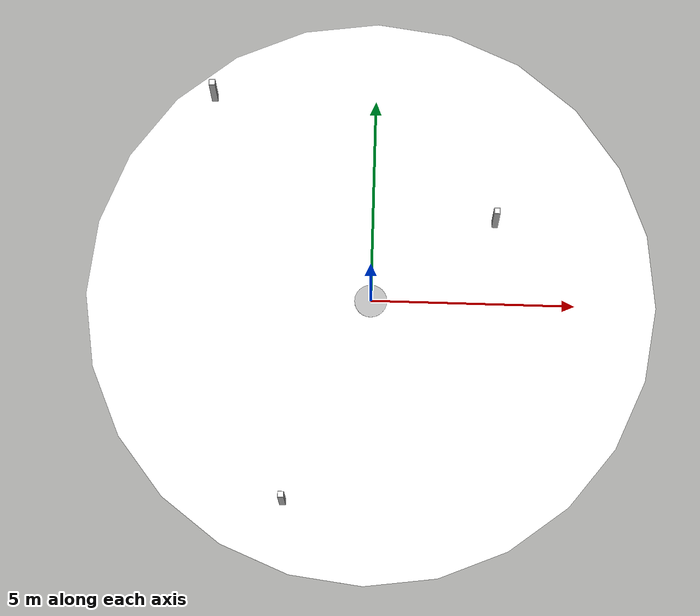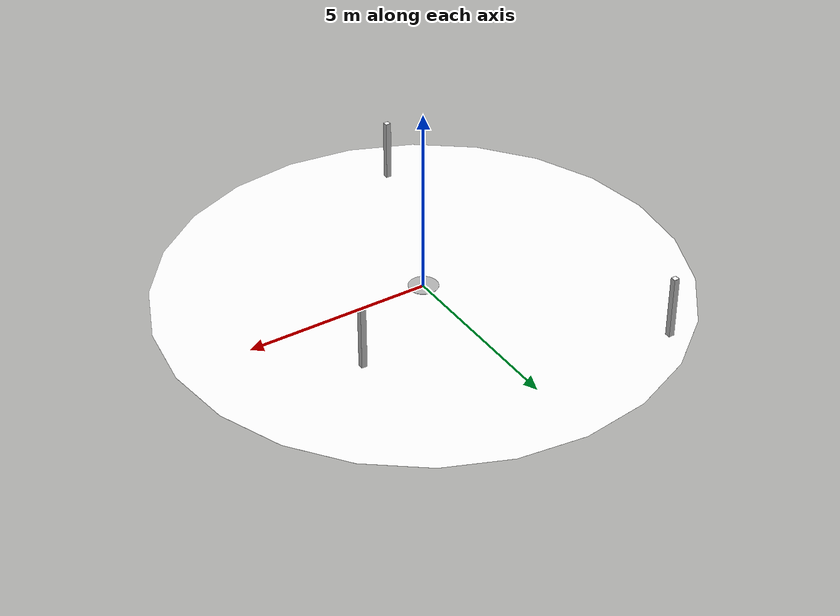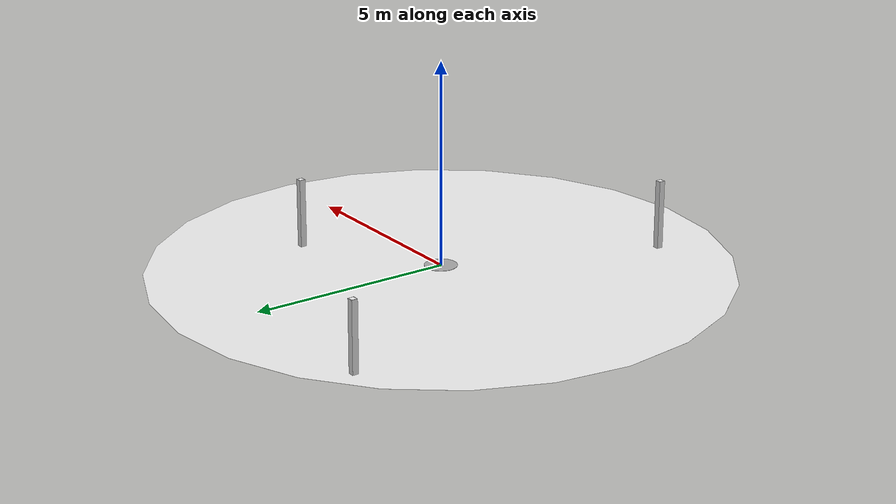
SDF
<sdf version="1.10">
 <world name="eletroquad26_m3">
  <physics type="ode">
   <max_step_size>0.001</max_step_size>
   <real_time_factor>1</real_time_factor>
   <real_time_update_rate>1000</real_time_update_rate>
  </physics>
  <gravity>0 0 -9.8000000000000007</gravity>
  <magnetic_field>5.5644999999999998e-06 2.2875799999999999e-05 -4.2388400000000002e-05</magnetic_field>
  <atmosphere type="adiabatic"/>
  <scene>
   <ambient>0.400000006 0.400000006 0.400000006 1</ambient>
   <background>0.699999988 0.699999988 0.699999988 1</background>
   <shadows>true</shadows>
  </scene>
  <model name="manometer1">
   <include merge="true"><uri>models/faulty_or_not/manometer</uri></include>
   <pose degrees="true">3 2 0.85 0 0 -90</pose>
  </model>
  <model name="pointer1">
   <include merge="true"><uri>models/faulty_or_not/manometer_pointer</uri></include>
   <pose degrees="true">3 2.009 0.8511 0 0 0</pose>
  </model>
  <model name="manometer2">
   <include merge="true"><uri>models/faulty_or_not/manometer</uri></include>
   <pose degrees="true">-4 5 0.85 0 0 -90</pose>
  </model>
  <model name="pointer2">
   <include merge="true"><uri>models/faulty_or_not/manometer_pointer</uri></include>
   <pose degrees="true">-4 5.009 0.8511 0 0 0</pose>
  </model>
  <model name="manometer3">
   <include merge="true"><uri>models/faulty_or_not/manometer</uri></include>
   <pose degrees="true">-2 -5 0.85 0 0 -90</pose>
  </model>
  <model name="pointer3">
   <include merge="true"><uri>models/faulty_or_not/manometer_pointer</uri></include>
   <pose degrees="true">-2 -5.009 0.8511 0 0 0</pose>
  </model>
  <include>
   <uri>models/miscs/takeoff_platform</uri>
   <static>true</static>
   <pose degrees="true">0 0 0.01 0 0 0</pose>
  </include>
  <include>
   <uri>models/miscs/arenas/circle</uri>
   <static>true</static>
   <pose degrees="true">0 0 0 0 0 -90</pose>
  </include>
  <light name="sun" type="directional">
   <pose>0 0 10 0 0 0</pose>
   <intensity>1</intensity>
   <direction>-0.5 0.10000000000000001 -0.90000000000000002</direction>
   <diffuse>0.800000012 0.800000012 0.800000012 1</diffuse>
   <specular>0.200000003 0.200000003 0.200000003 1</specular>
   <attenuation>
    <range>1000</range>
    <linear>0.01</linear>
    <constant>0.90000000000000002</constant>
    <quadratic>0.001</quadratic>
   </attenuation>
   <spot><inner_angle>0</inner_angle><outer_angle>0</outer_angle><falloff>0</falloff></spot>
  </light>
  <spherical_coordinates>
   <surface_model>EARTH_WGS84</surface_model>
   <world_frame_orientation>ENU</world_frame_orientation>
   <latitude_deg>47.397971057728974</latitude_deg>
   <longitude_deg>8.546163739800146</longitude_deg>
   <elevation>0</elevation>
  </spherical_coordinates>
 </world>
</sdf>

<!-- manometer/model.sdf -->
<sdf version='1.10'>
<model name='manometer'>
  <link name='manometer_link'>
    <enable_wind>false</enable_wind>
    <collision name='manometer_collision'>
      <geometry><box><size>0.15 0.15 1.7</size></box></geometry>
      <surface>
        <friction><ode/></friction>
        <bounce/>
        <contact/>
      </surface>
    </collision>
    <visual name='manometer_visual'>
      <geometry><box><size>0.15 0.15 1.7</size></box></geometry>
      <material>
        <diffuse>0.7 0.7 0.7 1</diffuse>
        <specular>1 1 1 1</specular>
      </material>
    </visual>
    <visual name='manometer_image'>
      <pose relative_to='manometer_collision'>0 0 0.8501 0 0 0</pose>
      <geometry><plane>
        <normal>0 0 1</normal>
        <size>0.127 0.127</size>
      </plane></geometry>
      <material>
        <diffuse>1 1 1 1</diffuse>
        <specular>1 1 1 1</specular>
        <pbr>
          <metal>
            <albedo_map>materials/textures/manometer.png</albedo_map>
            <metalness>0</metalness>
            <roughness>1</roughness>
          </metal>
        </pbr>
      </material>
    </visual>
  </link>
  <self_collide>false</self_collide>
</model>
</sdf>

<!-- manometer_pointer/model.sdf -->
<sdf version='1.10'>
<model name='manometer_pointer'>
  <link name='pointer_link'>
    <enable_wind>false</enable_wind>
    <visual name='pointer_image'>
      <geometry><plane>
        <normal>0 0 1</normal>
        <size>0.1 0.1</size>
      </plane></geometry>
      <material>
        <diffuse>1 1 1 1</diffuse>
        <specular>1 1 1 1</specular>
        <pbr>
          <metal>
            <albedo_map>materials/textures/pointer.png</albedo_map>
            <metalness>0</metalness>
            <roughness>1</roughness>
          </metal>
        </pbr>
      </material>
    </visual>
  </link>
  <self_collide>false</self_collide>
</model>
</sdf>

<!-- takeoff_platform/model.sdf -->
<sdf version='1.10'>
<model name='takeoff_platform'>
  <link name='takeoff_link'>
    <enable_wind>false</enable_wind>
    <include><uri>models/miscs/default_platform</uri></include>
    <visual name='takeoff_image'>
      <pose>0 0 0.006 0 0 0</pose>
      <geometry><cylinder>
        <radius>0.4</radius>
        <length>0.01</length>
      </cylinder></geometry>
        <material>
        <diffuse>0.7 0.7 0.7 1</diffuse>
        <specular>1 1 1 1</specular>
        <pbr>
          <metal>
            <albedo_map>materials/textures/takeoff.png</albedo_map>
            <metalness>0</metalness>
            <roughness>1</roughness>
          </metal>
        </pbr>
        </material>
    </visual>
  </link>
  <self_collide>false</self_collide>
</model>
</sdf>

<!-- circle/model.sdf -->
<sdf version='1.10'>
<model name='arena'>
  <link name='arena_link'>
    <enable_wind>false</enable_wind>
    <collision name='arena_collision'>
      <geometry><cylinder>
        <radius>7</radius>
        <length>0.001</length>
      </cylinder></geometry>
      <surface>
        <friction><ode/></friction>
        <bounce/>
        <contact/>
      </surface>
    </collision>
    <visual name='arena_visual'>
      <geometry><cylinder>
        <radius>7</radius>
        <length>0.001</length>
      </cylinder></geometry>
      <material>
        <ambient>0.4 0.4 0.4 1</ambient>
        <diffuse>1 1 1 1</diffuse>
        <specular>1 1 1 1</specular>
      </material>
    </visual>
  </link>
  <self_collide>false</self_collide>
</model>
</sdf>
